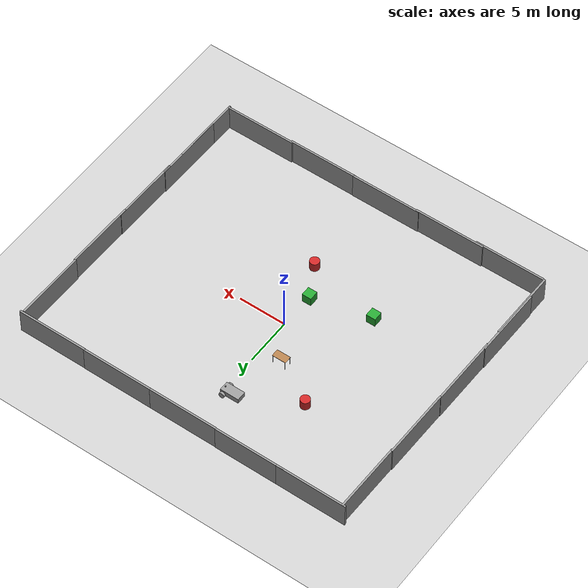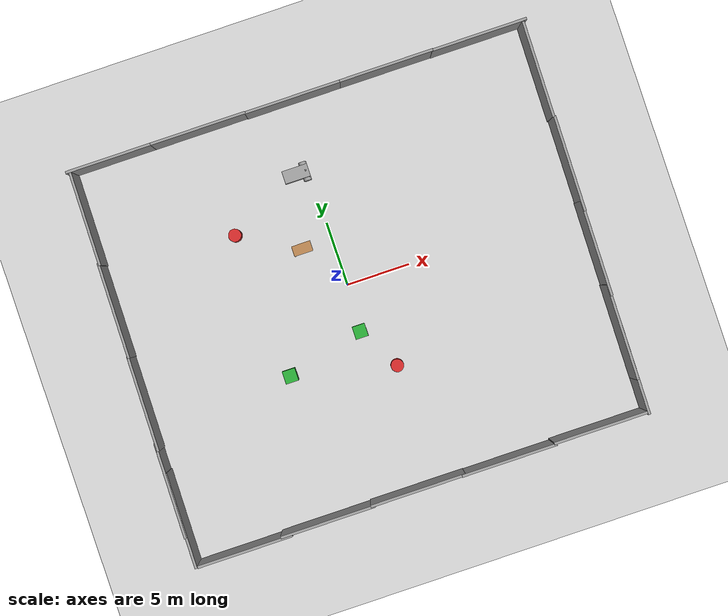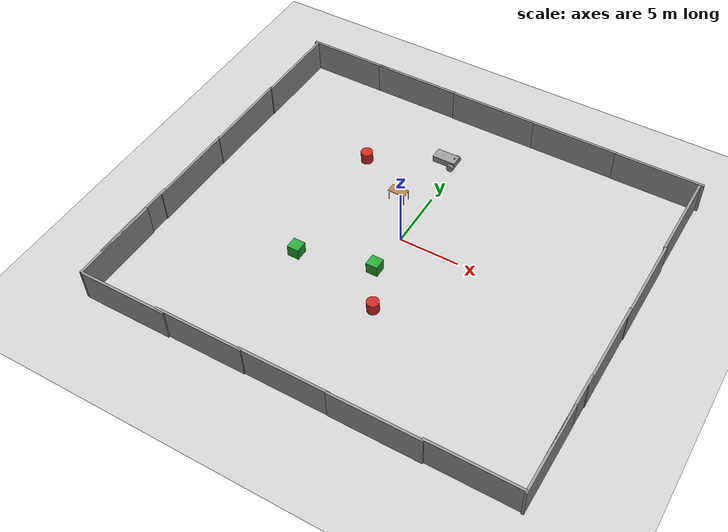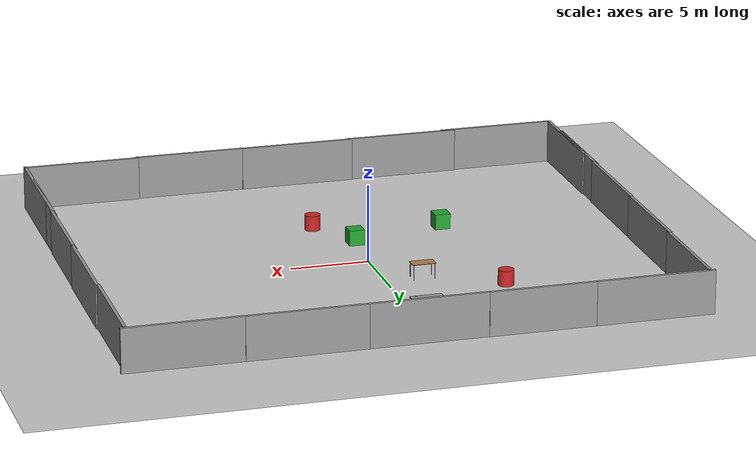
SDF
<sdf version="1.7">
 <world name="default">
  <light name="sun" type="directional">
   <pose>0 0 10 0 -0 0</pose>
   <diffuse>0.8 0.8 0.8 1</diffuse>
   <specular>0.2 0.2 0.2 1</specular>
   <attenuation>
    <range>1000</range>
    <constant>0.9</constant>
    <linear>0.01</linear>
    <quadratic>0.001</quadratic>
   </attenuation>
   <direction>-0.5 0.1 -0.9</direction>
   <spot><inner_angle>0</inner_angle><outer_angle>0</outer_angle><falloff>0</falloff></spot>
  </light>
  <model name="ground_plane">
   <static>1</static>
   <link name="link">
    <collision name="collision">
     <geometry><plane><normal>0 0 1</normal><size>100 100</size></plane></geometry>
     <surface><friction><ode><mu>100</mu><mu2>50</mu2></ode></friction></surface>
    </collision>
    <visual name="visual">
     <cast_shadows>0</cast_shadows>
     <geometry><plane><normal>0 0 1</normal><size>100 100</size></plane></geometry>
     <material>
      <script><uri>file://media/materials/scripts/gazebo.material</uri><name>Gazebo/Grey</name></script>
     </material>
    </visual>
   </link>
  </model>
  <gravity>0 0 -9.8</gravity>
  <magnetic_field>6e-06 2.3e-05 -4.2e-05</magnetic_field>
  <atmosphere type="adiabatic"/>
  <physics type="ode">
   <max_step_size>0.001</max_step_size>
   <real_time_factor>1</real_time_factor>
   <real_time_update_rate>1000</real_time_update_rate>
  </physics>
  <scene><ambient>0.4 0.4 0.4 1</ambient><background>0.7 0.7 0.7 1</background><shadows>1</shadows></scene>
  <model name="unit_box">
   <pose>-6.35709 -5.20828 0.499995 1e-05 -0 0</pose>
   <link name="link">
    <inertial>
     <mass>1</mass>
     <inertia>
      <ixx>0.166667</ixx>
      <ixy>0</ixy>
      <ixz>0</ixz>
      <iyy>0.166667</iyy>
      <iyz>0</iyz>
      <izz>0.166667</izz>
     </inertia>
    </inertial>
    <collision name="collision"><geometry><box><size>1 1 1</size></box></geometry></collision>
    <visual name="visual">
     <geometry><box><size>1 1 1</size></box></geometry>
     <material>
      <script><name>Gazebo/Green</name><uri>file://media/materials/scripts/gazebo.material</uri></script>
     </material>
    </visual>
   </link>
  </model>
  <model name="unit_box_0">
   <pose>-0.213589 -3.67444 0.499995 1e-05 -0 0</pose>
   <link name="link">
    <inertial>
     <mass>1</mass>
     <inertia>
      <ixx>0.166667</ixx>
      <ixy>0</ixy>
      <ixz>0</ixz>
      <iyy>0.166667</iyy>
      <iyz>0</iyz>
      <izz>0.166667</izz>
     </inertia>
    </inertial>
    <collision name="collision"><geometry><box><size>1 1 1</size></box></geometry></collision>
    <visual name="visual">
     <geometry><box><size>1 1 1</size></box></geometry>
     <material>
      <script><name>Gazebo/Green</name><uri>file://media/materials/scripts/gazebo.material</uri></script>
     </material>
    </visual>
   </link>
  </model>
  <model name="unit_cylinder_0">
   <pose>1.64762 -7.05044 0.499994 -4e-06 -3e-06 -0</pose>
   <link name="link">
    <inertial>
     <mass>1</mass>
     <inertia><ixx>0.145833</ixx><ixy>0</ixy><ixz>0</ixz><iyy>0.145833</iyy><iyz>0</iyz><izz>0.125</izz></inertia>
    </inertial>
    <collision name="collision">
     <geometry><cylinder><radius>0.5</radius><length>1</length></cylinder></geometry>
    </collision>
    <visual name="visual">
     <geometry><cylinder><radius>0.5</radius><length>1</length></cylinder></geometry>
     <material>
      <script><name>Gazebo/Red</name><uri>file://media/materials/scripts/gazebo.material</uri></script>
     </material>
    </visual>
   </link>
  </model>
  <model name="unit_cylinder_1">
   <pose>-6.94915 6.32114 0.499994 -4e-06 -3e-06 -0</pose>
   <link name="link">
    <inertial>
     <mass>1</mass>
     <inertia><ixx>0.145833</ixx><ixy>0</ixy><ixz>0</ixz><iyy>0.145833</iyy><iyz>0</iyz><izz>0.125</izz></inertia>
    </inertial>
    <collision name="collision">
     <geometry><cylinder><radius>0.5</radius><length>1</length></cylinder></geometry>
    </collision>
    <visual name="visual">
     <geometry><cylinder><radius>0.5</radius><length>1</length></cylinder></geometry>
     <material>
      <script><name>Gazebo/Red</name><uri>file://media/materials/scripts/gazebo.material</uri></script>
     </material>
    </visual>
   </link>
  </model>
  <audio><device>default</device></audio>
  <spherical_coordinates>
   <surface_model>EARTH_WGS84</surface_model>
   <latitude_deg>0</latitude_deg>
   <longitude_deg>0</longitude_deg>
   <elevation>0</elevation>
   <heading_deg>0</heading_deg>
  </spherical_coordinates>
  <model name="grey_wall">
   <static>1</static>
   <link name="link">
    <pose>0 0 1.4 0 -0 0</pose>
    <collision name="collision"><geometry><box><size>7.5 0.2 2.8</size></box></geometry></collision>
    <visual name="visual">
     <cast_shadows>0</cast_shadows>
     <geometry><box><size>7.5 0.2 2.8</size></box></geometry>
     <material>
      <script>
       <uri>model://grey_wall/materials/scripts</uri>
       <uri>model://grey_wall/materials/textures</uri>
       <name>vrc/grey_wall</name>
      </script>
     </material>
    </visual>
   </link>
   <pose>-6.89246 14.6794 0 0 -0 0</pose>
  </model>
  <model name="grey_wall_clone">
   <static>1</static>
   <link name="link">
    <pose>0 0 1.4 0 -0 0</pose>
    <collision name="collision"><geometry><box><size>7.5 0.2 2.8</size></box></geometry></collision>
    <visual name="visual">
     <cast_shadows>0</cast_shadows>
     <geometry><box><size>7.5 0.2 2.8</size></box></geometry>
     <material>
      <script>
       <uri>model://grey_wall/materials/scripts</uri>
       <uri>model://grey_wall/materials/textures</uri>
       <name>vrc/grey_wall</name>
      </script>
     </material>
    </visual>
   </link>
   <pose>0.55685 14.6431 0 0 -0 0</pose>
  </model>
  <model name="grey_wall_clone_0">
   <static>1</static>
   <link name="link">
    <pose>0 0 1.4 0 -0 0</pose>
    <collision name="collision"><geometry><box><size>7.5 0.2 2.8</size></box></geometry></collision>
    <visual name="visual">
     <cast_shadows>0</cast_shadows>
     <geometry><box><size>7.5 0.2 2.8</size></box></geometry>
     <material>
      <script>
       <uri>model://grey_wall/materials/scripts</uri>
       <uri>model://grey_wall/materials/textures</uri>
       <name>vrc/grey_wall</name>
      </script>
     </material>
    </visual>
   </link>
   <pose>7.93522 14.6438 0 0 -0 0</pose>
  </model>
  <model name="grey_wall_clone_1">
   <static>1</static>
   <link name="link">
    <pose>0 0 1.4 0 -0 0</pose>
    <collision name="collision"><geometry><box><size>7.5 0.2 2.8</size></box></geometry></collision>
    <visual name="visual">
     <cast_shadows>0</cast_shadows>
     <geometry><box><size>7.5 0.2 2.8</size></box></geometry>
     <material>
      <script>
       <uri>model://grey_wall/materials/scripts</uri>
       <uri>model://grey_wall/materials/textures</uri>
       <name>vrc/grey_wall</name>
      </script>
     </material>
    </visual>
   </link>
   <pose>15.3332 14.6185 0 0 -0 0</pose>
  </model>
  <model name="grey_wall_clone_2">
   <static>1</static>
   <link name="link">
    <pose>0 0 1.4 0 -0 0</pose>
    <collision name="collision"><geometry><box><size>7.5 0.2 2.8</size></box></geometry></collision>
    <visual name="visual">
     <cast_shadows>0</cast_shadows>
     <geometry><box><size>7.5 0.2 2.8</size></box></geometry>
     <material>
      <script>
       <uri>model://grey_wall/materials/scripts</uri>
       <uri>model://grey_wall/materials/textures</uri>
       <name>vrc/grey_wall</name>
      </script>
     </material>
    </visual>
   </link>
   <pose>-13.5854 14.681 0 0 -0 0</pose>
  </model>
  <model name="grey_wall_clone_3_clone">
   <static>1</static>
   <link name="link">
    <pose>0 0 1.4 0 -0 0</pose>
    <collision name="collision"><geometry><box><size>7.5 0.2 2.8</size></box></geometry></collision>
    <visual name="visual">
     <cast_shadows>0</cast_shadows>
     <geometry><box><size>7.5 0.2 2.8</size></box></geometry>
     <material>
      <script>
       <uri>model://grey_wall/materials/scripts</uri>
       <uri>model://grey_wall/materials/textures</uri>
       <name>vrc/grey_wall</name>
      </script>
     </material>
    </visual>
   </link>
   <pose>18.7182 10.7403 0 0 -0 1.55823</pose>
  </model>
  <model name="grey_wall_clone_3_clone_0">
   <static>1</static>
   <link name="link">
    <pose>0 0 1.4 0 -0 0</pose>
    <collision name="collision"><geometry><box><size>7.5 0.2 2.8</size></box></geometry></collision>
    <visual name="visual">
     <cast_shadows>0</cast_shadows>
     <geometry><box><size>7.5 0.2 2.8</size></box></geometry>
     <material>
      <script>
       <uri>model://grey_wall/materials/scripts</uri>
       <uri>model://grey_wall/materials/textures</uri>
       <name>vrc/grey_wall</name>
      </script>
     </material>
    </visual>
   </link>
   <pose>18.6998 3.29679 0 0 -0 1.55823</pose>
  </model>
  <model name="grey_wall_clone_3_clone_1">
   <static>1</static>
   <link name="link">
    <pose>0 0 1.4 0 -0 0</pose>
    <collision name="collision"><geometry><box><size>7.5 0.2 2.8</size></box></geometry></collision>
    <visual name="visual">
     <cast_shadows>0</cast_shadows>
     <geometry><box><size>7.5 0.2 2.8</size></box></geometry>
     <material>
      <script>
       <uri>model://grey_wall/materials/scripts</uri>
       <uri>model://grey_wall/materials/textures</uri>
       <name>vrc/grey_wall</name>
      </script>
     </material>
    </visual>
   </link>
   <pose>18.573 -3.37283 0 0 -0 1.55823</pose>
  </model>
  <model name="grey_wall_clone_3_clone_2">
   <static>1</static>
   <link name="link">
    <pose>0 0 1.4 0 -0 0</pose>
    <collision name="collision"><geometry><box><size>7.5 0.2 2.8</size></box></geometry></collision>
    <visual name="visual">
     <cast_shadows>0</cast_shadows>
     <geometry><box><size>7.5 0.2 2.8</size></box></geometry>
     <material>
      <script>
       <uri>model://grey_wall/materials/scripts</uri>
       <uri>model://grey_wall/materials/textures</uri>
       <name>vrc/grey_wall</name>
      </script>
     </material>
    </visual>
   </link>
   <pose>18.4441 -9.94299 0 0 -0 1.55823</pose>
  </model>
  <model name="grey_wall_clone_3_clone_3">
   <static>1</static>
   <link name="link">
    <pose>0 0 1.4 0 -0 0</pose>
    <collision name="collision"><geometry><box><size>7.5 0.2 2.8</size></box></geometry></collision>
    <visual name="visual">
     <cast_shadows>0</cast_shadows>
     <geometry><box><size>7.5 0.2 2.8</size></box></geometry>
     <material>
      <script>
       <uri>model://grey_wall/materials/scripts</uri>
       <uri>model://grey_wall/materials/textures</uri>
       <name>vrc/grey_wall</name>
      </script>
     </material>
    </visual>
   </link>
   <pose>18.4173 -12.6841 0 0 -0 1.55823</pose>
  </model>
  <model name="grey_wall_clone_1_clone">
   <static>1</static>
   <link name="link">
    <pose>0 0 1.4 0 -0 0</pose>
    <collision name="collision"><geometry><box><size>7.5 0.2 2.8</size></box></geometry></collision>
    <visual name="visual">
     <cast_shadows>0</cast_shadows>
     <geometry><box><size>7.5 0.2 2.8</size></box></geometry>
     <material>
      <script>
       <uri>model://grey_wall/materials/scripts</uri>
       <uri>model://grey_wall/materials/textures</uri>
       <name>vrc/grey_wall</name>
      </script>
     </material>
    </visual>
   </link>
   <pose>14.6393 -16.2361 0 0 -0 0</pose>
  </model>
  <model name="grey_wall_clone_1_clone_0">
   <static>1</static>
   <link name="link">
    <pose>0 0 1.4 0 -0 0</pose>
    <collision name="collision"><geometry><box><size>7.5 0.2 2.8</size></box></geometry></collision>
    <visual name="visual">
     <cast_shadows>0</cast_shadows>
     <geometry><box><size>7.5 0.2 2.8</size></box></geometry>
     <material>
      <script>
       <uri>model://grey_wall/materials/scripts</uri>
       <uri>model://grey_wall/materials/textures</uri>
       <name>vrc/grey_wall</name>
      </script>
     </material>
    </visual>
   </link>
   <pose>7.33876 -16.3438 0 0 -0 0</pose>
  </model>
  <model name="grey_wall_clone_1_clone_1">
   <static>1</static>
   <link name="link">
    <pose>0 0 1.4 0 -0 0</pose>
    <collision name="collision"><geometry><box><size>7.5 0.2 2.8</size></box></geometry></collision>
    <visual name="visual">
     <cast_shadows>0</cast_shadows>
     <geometry><box><size>7.5 0.2 2.8</size></box></geometry>
     <material>
      <script>
       <uri>model://grey_wall/materials/scripts</uri>
       <uri>model://grey_wall/materials/textures</uri>
       <name>vrc/grey_wall</name>
      </script>
     </material>
    </visual>
   </link>
   <pose>0.117688 -16.3122 0 0 -0 0</pose>
  </model>
  <model name="grey_wall_clone_1_clone_2">
   <static>1</static>
   <link name="link">
    <pose>0 0 1.4 0 -0 0</pose>
    <collision name="collision"><geometry><box><size>7.5 0.2 2.8</size></box></geometry></collision>
    <visual name="visual">
     <cast_shadows>0</cast_shadows>
     <geometry><box><size>7.5 0.2 2.8</size></box></geometry>
     <material>
      <script>
       <uri>model://grey_wall/materials/scripts</uri>
       <uri>model://grey_wall/materials/textures</uri>
       <name>vrc/grey_wall</name>
      </script>
     </material>
    </visual>
   </link>
   <pose>-7.02981 -16.3777 0 0 -0 0</pose>
  </model>
  <model name="grey_wall_clone_1_clone_3">
   <static>1</static>
   <link name="link">
    <pose>0 0 1.4 0 -0 0</pose>
    <collision name="collision"><geometry><box><size>7.5 0.2 2.8</size></box></geometry></collision>
    <visual name="visual">
     <cast_shadows>0</cast_shadows>
     <geometry><box><size>7.5 0.2 2.8</size></box></geometry>
     <material>
      <script>
       <uri>model://grey_wall/materials/scripts</uri>
       <uri>model://grey_wall/materials/textures</uri>
       <name>vrc/grey_wall</name>
      </script>
     </material>
    </visual>
   </link>
   <pose>-13.6433 -16.4945 0 0 -0 0</pose>
  </model>
  <model name="grey_wall_clone_3_clone_1_clone">
   <static>1</static>
   <link name="link">
    <pose>0 0 1.4 0 -0 0</pose>
    <collision name="collision"><geometry><box><size>7.5 0.2 2.8</size></box></geometry></collision>
    <visual name="visual">
     <cast_shadows>0</cast_shadows>
     <geometry><box><size>7.5 0.2 2.8</size></box></geometry>
     <material>
      <script>
       <uri>model://grey_wall/materials/scripts</uri>
       <uri>model://grey_wall/materials/textures</uri>
       <name>vrc/grey_wall</name>
      </script>
     </material>
    </visual>
   </link>
   <pose>-17.0721 11.0167 0 0 -0 1.55823</pose>
  </model>
  <model name="grey_wall_clone_3_clone_1_clone_0">
   <static>1</static>
   <link name="link">
    <pose>0 0 1.4 0 -0 0</pose>
    <collision name="collision"><geometry><box><size>7.5 0.2 2.8</size></box></geometry></collision>
    <visual name="visual">
     <cast_shadows>0</cast_shadows>
     <geometry><box><size>7.5 0.2 2.8</size></box></geometry>
     <material>
      <script>
       <uri>model://grey_wall/materials/scripts</uri>
       <uri>model://grey_wall/materials/textures</uri>
       <name>vrc/grey_wall</name>
      </script>
     </material>
    </visual>
   </link>
   <pose>-17.2357 3.73861 0 0 -0 1.55823</pose>
  </model>
  <model name="grey_wall_clone_3_clone_1_clone_1">
   <static>1</static>
   <link name="link">
    <pose>0 0 1.4 0 -0 0</pose>
    <collision name="collision"><geometry><box><size>7.5 0.2 2.8</size></box></geometry></collision>
    <visual name="visual">
     <cast_shadows>0</cast_shadows>
     <geometry><box><size>7.5 0.2 2.8</size></box></geometry>
     <material>
      <script>
       <uri>model://grey_wall/materials/scripts</uri>
       <uri>model://grey_wall/materials/textures</uri>
       <name>vrc/grey_wall</name>
      </script>
     </material>
    </visual>
   </link>
   <pose>-17.3667 -3.57486 0 0 -0 1.55823</pose>
  </model>
  <model name="grey_wall_clone_3_clone_1_clone_2">
   <static>1</static>
   <link name="link">
    <pose>0 0 1.4 0 -0 0</pose>
    <collision name="collision"><geometry><box><size>7.5 0.2 2.8</size></box></geometry></collision>
    <visual name="visual">
     <cast_shadows>0</cast_shadows>
     <geometry><box><size>7.5 0.2 2.8</size></box></geometry>
     <material>
      <script>
       <uri>model://grey_wall/materials/scripts</uri>
       <uri>model://grey_wall/materials/textures</uri>
       <name>vrc/grey_wall</name>
      </script>
     </material>
    </visual>
   </link>
   <pose>-17.5156 -10.4229 0 0 -0 1.55823</pose>
  </model>
  <model name="grey_wall_clone_3_clone_1_clone_3">
   <static>1</static>
   <link name="link">
    <pose>0 0 1.4 0 -0 0</pose>
    <collision name="collision"><geometry><box><size>7.5 0.2 2.8</size></box></geometry></collision>
    <visual name="visual">
     <cast_shadows>0</cast_shadows>
     <geometry><box><size>7.5 0.2 2.8</size></box></geometry>
     <material>
      <script>
       <uri>model://grey_wall/materials/scripts</uri>
       <uri>model://grey_wall/materials/textures</uri>
       <name>vrc/grey_wall</name>
      </script>
     </material>
    </visual>
   </link>
   <pose>-17.4705 -12.7985 0 0 -0 1.55823</pose>
  </model>
  <model name="follower_vehicle">
   <pose>-0.874951 9.31115 0.325006 0 -1.2e-05 0.000171</pose>
   <link name="chassis">
    <pose>-0.151427 -0 0.175 0 -0 0</pose>
    <inertial>
     <mass>1.14395</mass>
     <inertia>
      <ixx>0.126164</ixx>
      <ixy>0</ixy>
      <ixz>0</ixz>
      <iyy>0.416519</iyy>
      <iyz>0</iyz>
      <izz>0.481014</izz>
     </inertia>
    </inertial>
    <visual name="visual">
     <geometry><box><size>2.01142 1 0.568726</size></box></geometry>
     <material>
      <script><uri>file://media/materials/scripts/gazebo.material</uri><name>Gazebo/Grey</name></script>
     </material>
    </visual>
    <collision name="collision">
     <geometry><box><size>2.01142 1 0.568726</size></box></geometry>
     <surface>
      <friction><ode><mu>1</mu><mu2>1</mu2><fdir1>0 0 0</fdir1><slip1>0</slip1><slip2>0</slip2></ode></friction>
      <bounce><restitution_coefficient>0</restitution_coefficient><threshold>1e+06</threshold></bounce>
      <contact>
       <collide_without_contact>0</collide_without_contact>
       <collide_without_contact_bitmask>1</collide_without_contact_bitmask>
       <collide_bitmask>1</collide_bitmask>
       <ode>
        <soft_cfm>0</soft_cfm>
        <soft_erp>0.2</soft_erp>
        <kp>1e+13</kp>
        <kd>1</kd>
        <max_vel>0.01</max_vel>
        <min_depth>0</min_depth>
       </ode>
      </contact>
     </surface>
    </collision>
   </link>
   <link name="wheel_1">
    <pose>0.554283 0.625029 -0.025 1.5707 -0 0</pose>
    <inertial>
     <mass>2</mass>
     <inertia><ixx>0.145833</ixx><ixy>0</ixy><ixz>0</ixz><iyy>0.145833</iyy><iyz>0</iyz><izz>0.125</izz></inertia>
    </inertial>
    <visual name="visual">
     <geometry><cylinder><radius>0.3</radius><length>0.25</length></cylinder></geometry>
     <material>
      <script><uri>file://media/materials/scripts/gazebo.material</uri><name>Gazebo/Grey</name></script>
     </material>
    </visual>
    <collision name="collision">
     <geometry><cylinder><radius>0.3</radius><length>0.25</length></cylinder></geometry>
     <surface>
      <friction><ode><mu>1</mu><mu2>1</mu2><fdir1>0 0 0</fdir1><slip1>0</slip1><slip2>0</slip2></ode></friction>
      <bounce><restitution_coefficient>0</restitution_coefficient><threshold>1e+06</threshold></bounce>
      <contact>
       <collide_without_contact>0</collide_without_contact>
       <collide_without_contact_bitmask>1</collide_without_contact_bitmask>
       <collide_bitmask>1</collide_bitmask>
       <ode>
        <soft_cfm>0</soft_cfm>
        <soft_erp>0.2</soft_erp>
        <kp>1e+13</kp>
        <kd>1</kd>
        <max_vel>0.01</max_vel>
        <min_depth>0</min_depth>
       </ode>
      </contact>
     </surface>
    </collision>
   </link>
   <link name="wheel_2">
    <pose>0.554282 -0.625029 -0.025 1.5707 -0 0</pose>
    <inertial>
     <mass>2</mass>
     <inertia><ixx>0.145833</ixx><ixy>0</ixy><ixz>0</ixz><iyy>0.145833</iyy><iyz>0</iyz><izz>0.125</izz></inertia>
    </inertial>
    <visual name="visual">
     <geometry><cylinder><radius>0.3</radius><length>0.25</length></cylinder></geometry>
     <material>
      <script><uri>file://media/materials/scripts/gazebo.material</uri><name>Gazebo/Grey</name></script>
     </material>
    </visual>
    <collision name="collision">
     <geometry><cylinder><radius>0.3</radius><length>0.25</length></cylinder></geometry>
     <surface>
      <friction><ode><mu>1</mu><mu2>1</mu2><fdir1>0 0 0</fdir1><slip1>0</slip1><slip2>0</slip2></ode></friction>
      <bounce><restitution_coefficient>0</restitution_coefficient><threshold>1e+06</threshold></bounce>
      <contact>
       <collide_without_contact>0</collide_without_contact>
       <collide_without_contact_bitmask>1</collide_without_contact_bitmask>
       <collide_bitmask>1</collide_bitmask>
       <ode>
        <soft_cfm>0</soft_cfm>
        <soft_erp>0.2</soft_erp>
        <kp>1e+13</kp>
        <kd>1</kd>
        <max_vel>0.01</max_vel>
        <min_depth>0</min_depth>
       </ode>
      </contact>
     </surface>
    </collision>
   </link>
   <link name="caster">
    <pose>-0.957138 -0 -0.125 0 -0 0</pose>
    <inertial>
     <mass>1</mass>
     <inertia><ixx>0.1</ixx><ixy>0</ixy><ixz>0</ixz><iyy>0.1</iyy><iyz>0</iyz><izz>0.1</izz></inertia>
    </inertial>
    <visual name="visual">
     <geometry><sphere><radius>0.2</radius></sphere></geometry>
     <material>
      <script><uri>file://media/materials/scripts/gazebo.material</uri><name>Gazebo/Grey</name></script>
     </material>
    </visual>
    <collision name="collision">
     <geometry><sphere><radius>0.2</radius></sphere></geometry>
     <surface>
      <friction><ode><mu>1</mu><mu2>1</mu2><fdir1>0 0 0</fdir1><slip1>0</slip1><slip2>0</slip2></ode></friction>
      <bounce><restitution_coefficient>0</restitution_coefficient><threshold>1e+06</threshold></bounce>
      <contact>
       <collide_without_contact>0</collide_without_contact>
       <collide_without_contact_bitmask>1</collide_without_contact_bitmask>
       <collide_bitmask>1</collide_bitmask>
       <ode>
        <soft_cfm>0</soft_cfm>
        <soft_erp>0.2</soft_erp>
        <kp>1e+13</kp>
        <kd>1</kd>
        <max_vel>0.01</max_vel>
        <min_depth>0</min_depth>
       </ode>
      </contact>
     </surface>
    </collision>
   </link>
   <model name="depth_camera">
    <link name="link">
     <pose>0.05 0.05 0.05 0 -0 0</pose>
     <inertial>
      <mass>0.1</mass>
      <inertia>
       <ixx>0.000166667</ixx>
       <iyy>0.000166667</iyy>
       <izz>0.000166667</izz>
       <ixy>0</ixy>
       <ixz>0</ixz>
       <iyz>0</iyz>
      </inertia>
     </inertial>
     <collision name="collision"><geometry><box><size>0.1 0.1 0.1</size></box></geometry></collision>
     <visual name="visual"><geometry><box><size>0.1 0.1 0.1</size></box></geometry></visual>
     <sensor name="camera" type="depth">
      <camera name="depth">
       <horizontal_fov>1.047</horizontal_fov>
       <image><width>320</width><height>240</height></image>
       <clip><near>0.1</near><far>100</far></clip>
      </camera>
      <always_on>1</always_on>
      <update_rate>30</update_rate>
      <visualize>1</visualize>
     </sensor>
    </link>
    <pose>0.569632 -0.03223 0.502056 0 -0 0</pose>
   </model>
   <joint name="chassis_wheel_1_revolute" type="revolute">
    <parent>chassis</parent>
    <child>wheel_1</child>
    <axis>
     <xyz>0 0 1</xyz>
     <limit>
      <lower>-1.79769e+308</lower>
      <upper>1.79769e+308</upper>
      <effort>-1</effort>
      <velocity>-1</velocity>
     </limit>
     <dynamics>
      <spring_reference>0</spring_reference>
      <spring_stiffness>0</spring_stiffness>
      <damping>0</damping>
      <friction>0</friction>
     </dynamics>
    </axis>
    <physics>
     <ode><limit><cfm>0</cfm><erp>0.2</erp></limit><suspension><cfm>0</cfm><erp>0.2</erp></suspension></ode>
    </physics>
   </joint>
   <joint name="chassis_wheel_2_revolute" type="revolute">
    <parent>chassis</parent>
    <child>wheel_2</child>
    <axis>
     <xyz>0 0 1</xyz>
     <limit>
      <lower>-1.79769e+308</lower>
      <upper>1.79769e+308</upper>
      <effort>-1</effort>
      <velocity>-1</velocity>
     </limit>
     <dynamics>
      <spring_reference>0</spring_reference>
      <spring_stiffness>0</spring_stiffness>
      <damping>0</damping>
      <friction>0</friction>
     </dynamics>
    </axis>
    <physics>
     <ode><limit><cfm>0</cfm><erp>0.2</erp></limit><suspension><cfm>0</cfm><erp>0.2</erp></suspension></ode>
    </physics>
   </joint>
   <joint name="chassis_caster_ball" type="ball">
    <parent>chassis</parent>
    <child>caster</child>
    <physics>
     <ode><limit><cfm>0</cfm><erp>0.2</erp></limit><suspension><cfm>0</cfm><erp>0.2</erp></suspension></ode>
    </physics>
   </joint>
   <joint name="chassis_depth_camera_link_fixed" type="fixed">
    <parent>chassis</parent>
    <child>depth_camera::link</child>
    <physics>
     <ode><limit><cfm>0</cfm><erp>0.2</erp></limit><suspension><cfm>0</cfm><erp>0.2</erp></suspension></ode>
    </physics>
   </joint>
   <static>0</static>
   <plugin name="follower" filename="libFollowerPlugin.so"/>
  </model>
  <model name="table">
   <static>1</static>
   <link name="link">
    <collision name="surface">
     <pose>0 0 1 0 -0 0</pose>
     <geometry><box><size>1.5 0.8 0.03</size></box></geometry>
     <surface><friction><ode><mu>0.6</mu><mu2>0.6</mu2></ode></friction></surface>
    </collision>
    <visual name="visual1">
     <pose>0 0 1 0 -0 0</pose>
     <geometry><box><size>1.5 0.8 0.03</size></box></geometry>
     <material>
      <script><uri>file://media/materials/scripts/gazebo.material</uri><name>Gazebo/Wood</name></script>
     </material>
    </visual>
    <collision name="front_left_leg">
     <pose>0.68 0.38 0.5 0 -0 0</pose>
     <geometry><cylinder><radius>0.02</radius><length>1</length></cylinder></geometry>
    </collision>
    <visual name="front_left_leg">
     <pose>0.68 0.38 0.5 0 -0 0</pose>
     <geometry><cylinder><radius>0.02</radius><length>1</length></cylinder></geometry>
     <material>
      <script><uri>file://media/materials/scripts/gazebo.material</uri><name>Gazebo/Grey</name></script>
     </material>
    </visual>
    <collision name="front_right_leg">
     <pose>0.68 -0.38 0.5 0 -0 0</pose>
     <geometry><cylinder><radius>0.02</radius><length>1</length></cylinder></geometry>
    </collision>
    <visual name="front_right_leg">
     <pose>0.68 -0.38 0.5 0 -0 0</pose>
     <geometry><cylinder><radius>0.02</radius><length>1</length></cylinder></geometry>
     <material>
      <script><uri>file://media/materials/scripts/gazebo.material</uri><name>Gazebo/Grey</name></script>
     </material>
    </visual>
    <collision name="back_right_leg">
     <pose>-0.68 -0.38 0.5 0 -0 0</pose>
     <geometry><cylinder><radius>0.02</radius><length>1</length></cylinder></geometry>
    </collision>
    <visual name="back_right_leg">
     <pose>-0.68 -0.38 0.5 0 -0 0</pose>
     <geometry><cylinder><radius>0.02</radius><length>1</length></cylinder></geometry>
     <material>
      <script><uri>file://media/materials/scripts/gazebo.material</uri><name>Gazebo/Grey</name></script>
     </material>
    </visual>
    <collision name="back_left_leg">
     <pose>-0.68 0.38 0.5 0 -0 0</pose>
     <geometry><cylinder><radius>0.02</radius><length>1</length></cylinder></geometry>
    </collision>
    <visual name="back_left_leg">
     <pose>-0.68 0.38 0.5 0 -0 0</pose>
     <geometry><cylinder><radius>0.02</radius><length>1</length></cylinder></geometry>
     <material>
      <script><uri>file://media/materials/scripts/gazebo.material</uri><name>Gazebo/Grey</name></script>
     </material>
    </visual>
   </link>
   <pose>-2.40009 3.72191 0 0 -0 0</pose>
  </model>
 </world>
</sdf>
